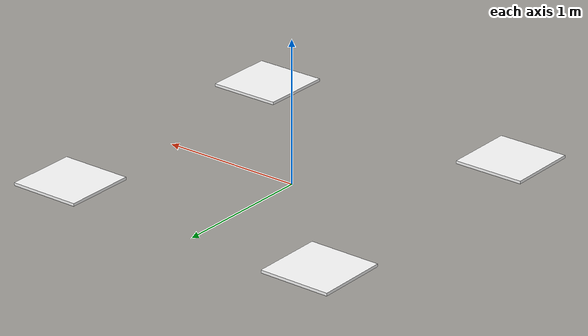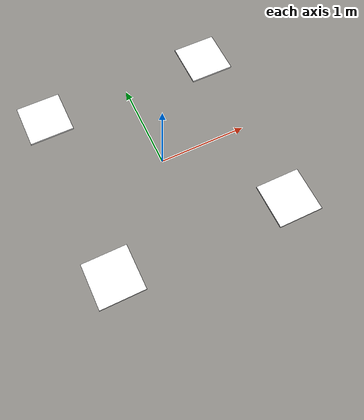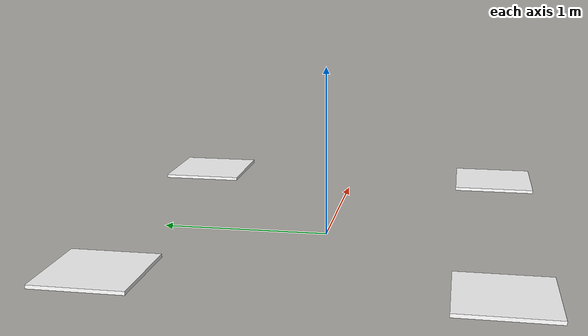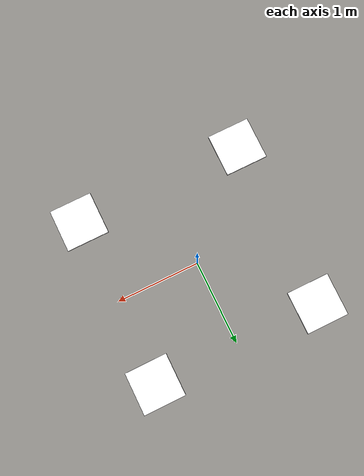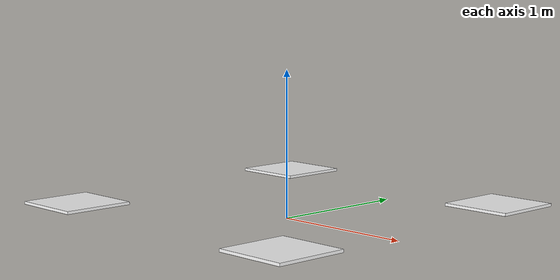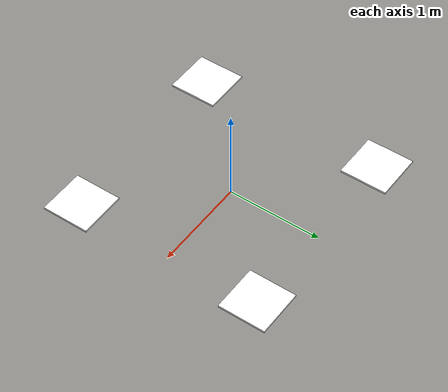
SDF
<?xml version="1.0" ?>
<sdf version="1.5">
  <model name='land_pad_station'>
    <include>
      <uri>model://land_pad_v2</uri>
      <pose>1 -1 0.1 0 0 0</pose>
    </include>
    <include>
      <uri>model://land_pad_v2</uri>
      <pose>-1 1 0.1 0 0 0</pose>
    </include>
    <include>
      <uri>model://land_pad_v2</uri>
      <pose>1 1 0.1 0 0 0</pose>
    </include>
    <include>
      <uri>model://land_pad_v2</uri>
      <pose>-1 -1 0.1 0 0 0</pose>
    </include>
  </model>
</sdf>

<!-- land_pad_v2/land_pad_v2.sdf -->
<sdf version="1.5">
  <model name="land_pad_v2">
      <link name="link">
        <collision name="box_collision">
          <geometry>
            <box>
              <size>0.5 0.5 0.01</size>
            </box>
          </geometry>
        </collision>

        <visual name="visual">
          <geometry>
            <box>
              <size>0.5 0.5 0.02</size>
            </box>
          </geometry>
          <material>
            <script>
              <uri>model://land_pad_v2/materials/scripts</uri>
              <uri>model://land_pad_v2/materials/textures</uri>
              <name>ArucoVisualMarker0/Marker</name>
            </script>
            <ambient>1 1 1 1</ambient>
            <diffuse>1 1 1 1</diffuse>
            <specular>0 0 0 1</specular>
            <emissive>1 1 1 0</emissive>
            <shader type='vertex'>
              <normal_map>__default__</normal_map>
            </shader>
        </material>
        </visual>

        <sensor name='my_contact' type='contact'>
          <contact>
            <collision>box_collision</collision>
          </contact>
        </sensor>
      </link>
  </model>
</sdf>
